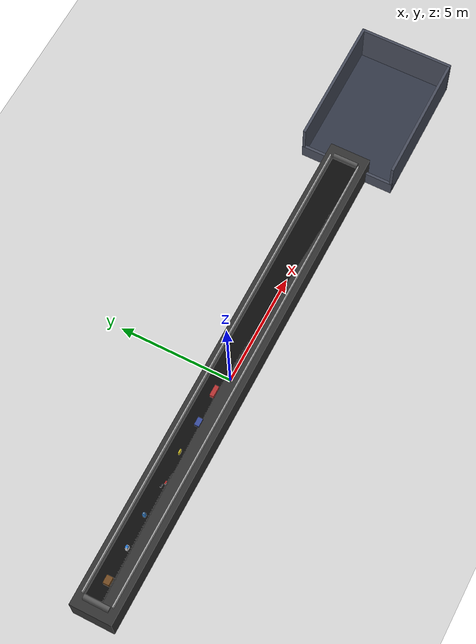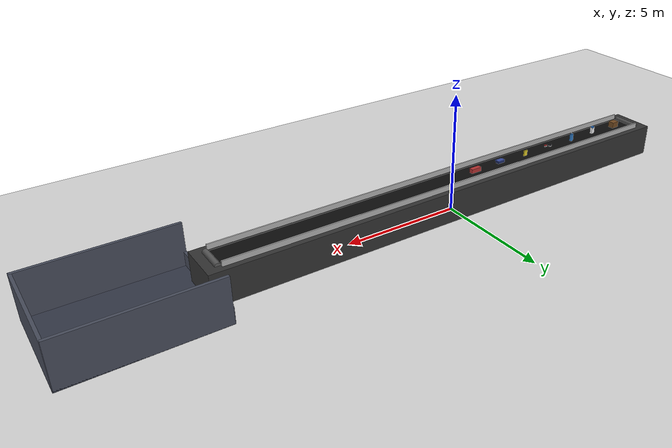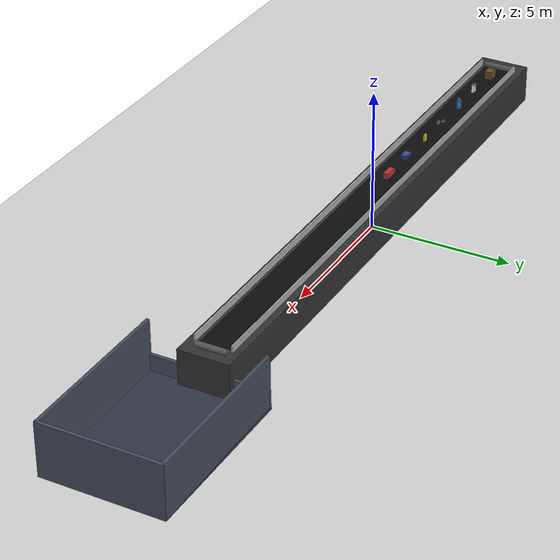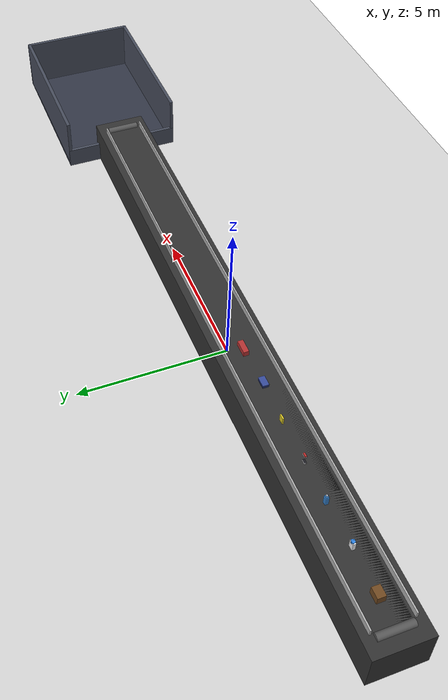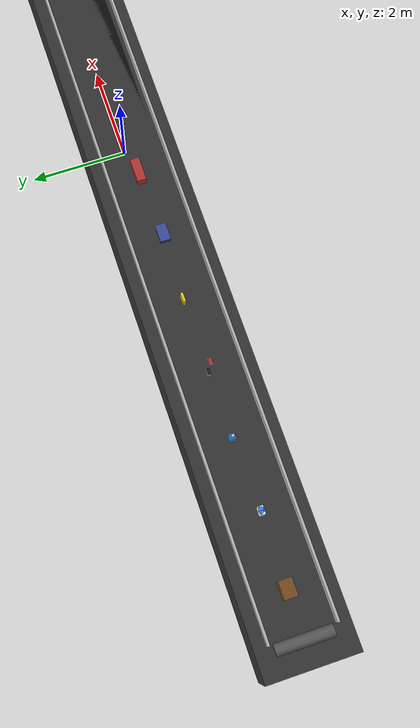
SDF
<?xml version="1.0" ?>
<sdf version="1.8">
  <world name="factory_world">
    <plugin filename="gz-sim-physics-system" name="gz::sim::systems::Physics"/>
    <plugin filename="gz-sim-scene-broadcaster-system" name="gz::sim::systems::SceneBroadcaster"/>
    <plugin filename="gz-sim-user-commands-system" name="gz::sim::systems::UserCommands"/>
    <plugin filename="gz-sim-sensors-system" name="gz::sim::systems::Sensors">
      <render_engine>ogre</render_engine>
    </plugin>

    <gravity>0 0 -9.8</gravity>

    <light name="sun" type="directional">
      <cast_shadows>true</cast_shadows>
      <pose>0 0 16 0 0 0</pose>
      <diffuse>0.95 0.95 0.95 1</diffuse>
      <specular>0.2 0.2 0.2 1</specular>
      <direction>-0.4 0.1 -0.9</direction>
    </light>

    <scene>
      <ambient>0.8 0.8 0.8 1</ambient>
      <background>0.93 0.93 0.93 1</background>
    </scene>

    <model name="ground_plane">
      <static>true</static>
      <link name="link">
        <collision name="collision">
          <geometry>
            <plane>
              <normal>0 0 1</normal>
              <size>80 80</size>
            </plane>
          </geometry>
        </collision>
        <visual name="visual">
          <geometry>
            <plane>
              <normal>0 0 1</normal>
              <size>80 80</size>
            </plane>
          </geometry>
          <material>
            <ambient>0.85 0.85 0.85 1</ambient>
            <diffuse>0.85 0.85 0.85 1</diffuse>
          </material>
        </visual>
      </link>
    </model>

    <!-- Conveyor dimensions:
         total frame length = 22.0 m
         belt top height     = 1.36 m above ground
         all items use the same commanded x velocity -->

    <model name="conveyor_base">
      <static>true</static>
      <pose>0 0 0.68 0 0 0</pose>
      <link name="base_link">
        <collision name="collision">
          <geometry>
            <box>
              <size>22.0 1.8 1.36</size>
            </box>
          </geometry>
        </collision>
        <visual name="visual">
          <geometry>
            <box>
              <size>22.0 1.8 1.36</size>
            </box>
          </geometry>
          <material>
            <ambient>0.20 0.20 0.20 1</ambient>
            <diffuse>0.20 0.20 0.20 1</diffuse>
          </material>
        </visual>
      </link>
    </model>

    <model name="belt_surface">
      <static>true</static>
      <pose>0 0 1.345 0 0 0</pose>
      <link name="belt_link">
        <collision name="collision">
          <geometry>
            <box>
              <size>20.8 1.08 0.03</size>
            </box>
          </geometry>
          <surface>
            <friction>
              <ode>
                <mu>1.8</mu>
                <mu2>1.8</mu2>
              </ode>
            </friction>
          </surface>
        </collision>
        <visual name="visual">
          <geometry>
            <box>
              <size>20.8 1.08 0.03</size>
            </box>
          </geometry>
          <material>
            <ambient>0.05 0.05 0.05 1</ambient>
            <diffuse>0.05 0.05 0.05 1</diffuse>
          </material>
        </visual>
      </link>
    </model>

    <model name="rail_left">
      <static>true</static>
      <pose>0 0.64 1.465 0 0 0</pose>
      <link name="link">
        <collision name="collision">
          <geometry>
            <box>
              <size>20.8 0.05 0.24</size>
            </box>
          </geometry>
        </collision>
        <visual name="visual">
          <geometry>
            <box>
              <size>20.8 0.05 0.24</size>
            </box>
          </geometry>
          <material>
            <ambient>0.70 0.70 0.70 1</ambient>
            <diffuse>0.70 0.70 0.70 1</diffuse>
          </material>
        </visual>
      </link>
    </model>

    <model name="rail_right">
      <static>true</static>
      <pose>0 -0.64 1.465 0 0 0</pose>
      <link name="link">
        <collision name="collision">
          <geometry>
            <box>
              <size>20.8 0.05 0.24</size>
            </box>
          </geometry>
        </collision>
        <visual name="visual">
          <geometry>
            <box>
              <size>20.8 0.05 0.24</size>
            </box>
          </geometry>
          <material>
            <ambient>0.70 0.70 0.70 1</ambient>
            <diffuse>0.70 0.70 0.70 1</diffuse>
          </material>
        </visual>
      </link>
    </model>

    <model name="roller_front">
      <static>true</static>
      <pose>10.50 0 1.36 1.5708 0 0</pose>
      <link name="link">
        <visual name="visual">
          <geometry>
            <cylinder>
              <radius>0.12</radius>
              <length>1.10</length>
            </cylinder>
          </geometry>
          <material>
            <ambient>0.35 0.35 0.35 1</ambient>
            <diffuse>0.35 0.35 0.35 1</diffuse>
          </material>
        </visual>
      </link>
    </model>

    <model name="roller_back">
      <static>true</static>
      <pose>-10.50 0 1.36 1.5708 0 0</pose>
      <link name="link">
        <visual name="visual">
          <geometry>
            <cylinder>
              <radius>0.12</radius>
              <length>1.10</length>
            </cylinder>
          </geometry>
          <material>
            <ambient>0.35 0.35 0.35 1</ambient>
            <diffuse>0.35 0.35 0.35 1</diffuse>
          </material>
        </visual>
      </link>
    </model>

    <!-- Support legs -->
    <model name="leg_1"><static>true</static><pose>-9.0 0.70 0.65 0 0 0</pose><link name="link"><collision name="collision"><geometry><box><size>0.12 0.12 1.30</size></box></geometry></collision><visual name="visual"><geometry><box><size>0.12 0.12 1.30</size></box></geometry><material><ambient>0.45 0.45 0.45 1</ambient><diffuse>0.45 0.45 0.45 1</diffuse></material></visual></link></model>
    <model name="leg_2"><static>true</static><pose>-9.0 -0.70 0.65 0 0 0</pose><link name="link"><collision name="collision"><geometry><box><size>0.12 0.12 1.30</size></box></geometry></collision><visual name="visual"><geometry><box><size>0.12 0.12 1.30</size></box></geometry><material><ambient>0.45 0.45 0.45 1</ambient><diffuse>0.45 0.45 0.45 1</diffuse></material></visual></link></model>
    <model name="leg_3"><static>true</static><pose>-4.5 0.70 0.65 0 0 0</pose><link name="link"><collision name="collision"><geometry><box><size>0.12 0.12 1.30</size></box></geometry></collision><visual name="visual"><geometry><box><size>0.12 0.12 1.30</size></box></geometry><material><ambient>0.45 0.45 0.45 1</ambient><diffuse>0.45 0.45 0.45 1</diffuse></material></visual></link></model>
    <model name="leg_4"><static>true</static><pose>-4.5 -0.70 0.65 0 0 0</pose><link name="link"><collision name="collision"><geometry><box><size>0.12 0.12 1.30</size></box></geometry></collision><visual name="visual"><geometry><box><size>0.12 0.12 1.30</size></box></geometry><material><ambient>0.45 0.45 0.45 1</ambient><diffuse>0.45 0.45 0.45 1</diffuse></material></visual></link></model>
    <model name="leg_5"><static>true</static><pose>0.0 0.70 0.65 0 0 0</pose><link name="link"><collision name="collision"><geometry><box><size>0.12 0.12 1.30</size></box></geometry></collision><visual name="visual"><geometry><box><size>0.12 0.12 1.30</size></box></geometry><material><ambient>0.45 0.45 0.45 1</ambient><diffuse>0.45 0.45 0.45 1</diffuse></material></visual></link></model>
    <model name="leg_6"><static>true</static><pose>0.0 -0.70 0.65 0 0 0</pose><link name="link"><collision name="collision"><geometry><box><size>0.12 0.12 1.30</size></box></geometry></collision><visual name="visual"><geometry><box><size>0.12 0.12 1.30</size></box></geometry><material><ambient>0.45 0.45 0.45 1</ambient><diffuse>0.45 0.45 0.45 1</diffuse></material></visual></link></model>
    <model name="leg_7"><static>true</static><pose>4.5 0.70 0.65 0 0 0</pose><link name="link"><collision name="collision"><geometry><box><size>0.12 0.12 1.30</size></box></geometry></collision><visual name="visual"><geometry><box><size>0.12 0.12 1.30</size></box></geometry><material><ambient>0.45 0.45 0.45 1</ambient><diffuse>0.45 0.45 0.45 1</diffuse></material></visual></link></model>
    <model name="leg_8"><static>true</static><pose>4.5 -0.70 0.65 0 0 0</pose><link name="link"><collision name="collision"><geometry><box><size>0.12 0.12 1.30</size></box></geometry></collision><visual name="visual"><geometry><box><size>0.12 0.12 1.30</size></box></geometry><material><ambient>0.45 0.45 0.45 1</ambient><diffuse>0.45 0.45 0.45 1</diffuse></material></visual></link></model>
    <model name="leg_9"><static>true</static><pose>9.0 0.70 0.65 0 0 0</pose><link name="link"><collision name="collision"><geometry><box><size>0.12 0.12 1.30</size></box></geometry></collision><visual name="visual"><geometry><box><size>0.12 0.12 1.30</size></box></geometry><material><ambient>0.45 0.45 0.45 1</ambient><diffuse>0.45 0.45 0.45 1</diffuse></material></visual></link></model>
    <model name="leg_10"><static>true</static><pose>9.0 -0.70 0.65 0 0 0</pose><link name="link"><collision name="collision"><geometry><box><size>0.12 0.12 1.30</size></box></geometry></collision><visual name="visual"><geometry><box><size>0.12 0.12 1.30</size></box></geometry><material><ambient>0.45 0.45 0.45 1</ambient><diffuse>0.45 0.45 0.45 1</diffuse></material></visual></link></model>

    <!-- Wider and longer open-top collection box placed at a clearly lower height than the elevated conveyor so objects drop into it and remain collected. -->
    <!-- Transfer shelf removed so objects leave the conveyor and fall by gravity directly into the lower box. -->

    <model name="collection_box_bottom">
      <static>true</static>
      <pose>13.60 0 0.06 0 0 0</pose>
      <link name="link">
        <collision name="collision"><geometry><box><size>5.8 4.2 0.12</size></box></geometry><surface><friction><ode><mu>1.2</mu><mu2>1.2</mu2></ode></friction><bounce><restitution_coefficient>0.0</restitution_coefficient></bounce></surface></collision>
        <visual name="visual"><geometry><box><size>5.8 4.2 0.12</size></box></geometry><material><ambient>0.20 0.22 0.28 1</ambient><diffuse>0.20 0.22 0.28 1</diffuse></material></visual>
      </link>
    </model>

    <model name="collection_box_left_wall">
      <static>true</static>
      <pose>13.60 2.04 0.95 0 0 0</pose>
      <link name="link">
        <collision name="collision"><geometry><box><size>5.8 0.12 1.90</size></box></geometry><surface><friction><ode><mu>1.0</mu><mu2>1.0</mu2></ode></friction><bounce><restitution_coefficient>0.0</restitution_coefficient></bounce></surface></collision>
        <visual name="visual"><geometry><box><size>5.8 0.12 1.90</size></box></geometry><material><ambient>0.28 0.30 0.36 1</ambient><diffuse>0.28 0.30 0.36 1</diffuse></material></visual>
      </link>
    </model>

    <model name="collection_box_right_wall">
      <static>true</static>
      <pose>13.60 -2.04 0.95 0 0 0</pose>
      <link name="link">
        <collision name="collision"><geometry><box><size>5.8 0.12 1.90</size></box></geometry><surface><friction><ode><mu>1.0</mu><mu2>1.0</mu2></ode></friction><bounce><restitution_coefficient>0.0</restitution_coefficient></bounce></surface></collision>
        <visual name="visual"><geometry><box><size>5.8 0.12 1.90</size></box></geometry><material><ambient>0.28 0.30 0.36 1</ambient><diffuse>0.28 0.30 0.36 1</diffuse></material></visual>
      </link>
    </model>

    <model name="collection_box_back_wall">
      <static>true</static>
      <pose>16.46 0 0.95 0 0 0</pose>
      <link name="link">
        <collision name="collision">
          <geometry>
            <box>
              <size>0.12 4.2 1.90</size>
            </box>
          </geometry>
          <surface>
            <friction>
              <ode>
                <mu>1.0</mu>
                <mu2>1.0</mu2>
              </ode>
            </friction>
            <bounce>
              <restitution_coefficient>0.0</restitution_coefficient>
            </bounce>
          </surface>
        </collision>
        <visual name="visual">
          <geometry>
            <box>
              <size>0.12 4.2 1.90</size>
            </box>
          </geometry>
          <material>
            <ambient>0.28 0.30 0.36 1</ambient>
            <diffuse>0.28 0.30 0.36 1</diffuse>
          </material>
        </visual>
      </link>
    </model>

    <model name="collection_box_front_wall">
      <static>true</static>
      <pose>10.74 0 0.35 0 0 0</pose>
      <link name="link">
        <collision name="collision">
          <geometry>
            <box>
              <size>0.12 4.2 0.70</size>
            </box>
          </geometry>
          <surface>
            <friction>
              <ode>
                <mu>1.0</mu>
                <mu2>1.0</mu2>
              </ode>
            </friction>
            <bounce>
              <restitution_coefficient>0.0</restitution_coefficient>
            </bounce>
          </surface>
        </collision>
        <visual name="visual">
          <geometry>
            <box>
              <size>0.12 4.2 0.70</size>
            </box>
          </geometry>
          <material>
            <ambient>0.28 0.30 0.36 1</ambient>
            <diffuse>0.28 0.30 0.36 1</diffuse>
          </material>
        </visual>
      </link>
    </model>

    <model name="shipping_box_large">
      <static>false</static>
      <self_collide>false</self_collide>
      <pose>-9.6 0.00 1.505 0 0 0</pose>
      <plugin filename="gz-sim-velocity-control-system" name="gz::sim::systems::VelocityControl">
        <initial_linear>0.18 0 0</initial_linear>
      </plugin>
      <link name="link">
        <gravity>true</gravity>
        <velocity_decay><linear>0.0</linear><angular>8.0</angular></velocity_decay>
        <inertial><mass>0.55</mass><inertia><ixx>0.010</ixx><iyy>0.010</iyy><izz>0.010</izz></inertia></inertial>
        <collision name="collision">
          <geometry><box><size>0.34 0.26 0.26</size></box></geometry>
          <surface><friction><ode><mu>0.025</mu><mu2>0.025</mu2></ode></friction></surface>
        </collision>
        <visual name="visual">
          <geometry><box><size>0.34 0.26 0.26</size></box></geometry>
          <material><ambient>0.45 0.29 0.13 1</ambient><diffuse>0.45 0.29 0.13 1</diffuse></material>
        </visual>
      </link>
    </model>

    <model name="milk_carton">
      <static>false</static>
      <self_collide>false</self_collide>
      <pose>-8.2 -0.02 1.555 0 0 0</pose>
      <plugin filename="gz-sim-velocity-control-system" name="gz::sim::systems::VelocityControl">
        <initial_linear>0.18 0 0</initial_linear>
      </plugin>
      <link name="link">
        <gravity>true</gravity>
        <velocity_decay><linear>0.0</linear><angular>8.5</angular></velocity_decay>
        <inertial><mass>0.36</mass><inertia><ixx>0.005</ixx><iyy>0.005</iyy><izz>0.004</izz></inertia></inertial>
        <collision name="collision">
          <geometry><box><size>0.16 0.10 0.34</size></box></geometry>
          <surface><friction><ode><mu>0.022</mu><mu2>0.022</mu2></ode></friction></surface>
        </collision>
        <visual name="body_visual">
          <pose>0 0 -0.03 0 0 0</pose>
          <geometry><box><size>0.16 0.10 0.28</size></box></geometry>
          <material><ambient>0.97 0.97 0.98 1</ambient><diffuse>0.97 0.97 0.98 1</diffuse></material>
        </visual>
        <visual name="top_left">
          <pose>-0.02 0 0.12 0 0 0.42</pose>
          <geometry><box><size>0.07 0.10 0.07</size></box></geometry>
          <material><ambient>0.20 0.55 0.95 1</ambient><diffuse>0.20 0.55 0.95 1</diffuse></material>
        </visual>
        <visual name="top_right">
          <pose>0.02 0 0.12 0 0 -0.42</pose>
          <geometry><box><size>0.07 0.10 0.07</size></box></geometry>
          <material><ambient>0.20 0.55 0.95 1</ambient><diffuse>0.20 0.55 0.95 1</diffuse></material>
        </visual>
      </link>
    </model>

    <model name="bottle_boxy">
      <static>false</static>
      <self_collide>false</self_collide>
      <pose>-6.8 0.03 1.565 0 0 0</pose>
      <plugin filename="gz-sim-velocity-control-system" name="gz::sim::systems::VelocityControl">
        <initial_linear>0.18 0 0</initial_linear>
      </plugin>
      <link name="link">
        <gravity>true</gravity>
        <velocity_decay><linear>0.0</linear><angular>10.0</angular></velocity_decay>
        <inertial><mass>0.30</mass><inertia><ixx>0.004</ixx><iyy>0.004</iyy><izz>0.003</izz></inertia></inertial>
        <collision name="collision">
          <geometry><box><size>0.12 0.12 0.42</size></box></geometry>
          <surface><friction><ode><mu>0.020</mu><mu2>0.020</mu2></ode></friction></surface>
        </collision>
        <visual name="body_visual">
          <pose>0 0 -0.03 0 0 0</pose>
          <geometry><box><size>0.11 0.11 0.30</size></box></geometry>
          <material><ambient>0.25 0.60 0.95 0.85</ambient><diffuse>0.25 0.60 0.95 0.85</diffuse></material>
        </visual>
        <visual name="shoulder_visual">
          <pose>0 0 0.11 0 0 0</pose>
          <geometry><box><size>0.08 0.08 0.08</size></box></geometry>
          <material><ambient>0.25 0.60 0.95 0.85</ambient><diffuse>0.25 0.60 0.95 0.85</diffuse></material>
        </visual>
        <visual name="cap_visual">
          <pose>0 0 0.18 0 0 0</pose>
          <geometry><box><size>0.04 0.04 0.04</size></box></geometry>
          <material><ambient>0.95 0.95 0.98 1</ambient><diffuse>0.95 0.95 0.98 1</diffuse></material>
        </visual>
      </link>
    </model>

    <model name="sneaker_pair">
      <static>false</static>
      <self_collide>false</self_collide>
      <pose>-5.4 -0.02 1.475 0 0 0</pose>
      <plugin filename="gz-sim-velocity-control-system" name="gz::sim::systems::VelocityControl">
        <initial_linear>0.18 0 0</initial_linear>
      </plugin>
      <link name="link">
        <gravity>true</gravity>
        <velocity_decay><linear>0.0</linear><angular>9.0</angular></velocity_decay>
        <inertial><mass>0.42</mass><inertia><ixx>0.007</ixx><iyy>0.007</iyy><izz>0.006</izz></inertia></inertial>
        <collision name="collision">
          <geometry><box><size>0.36 0.20 0.12</size></box></geometry>
          <surface><friction><ode><mu>0.022</mu><mu2>0.022</mu2></ode></friction></surface>
        </collision>
        <visual name="left_shoe_sole">
          <pose>-0.09 0.05 -0.02 0 0 0</pose>
          <geometry><box><size>0.14 0.07 0.03</size></box></geometry>
          <material><ambient>0.95 0.95 0.95 1</ambient><diffuse>0.95 0.95 0.95 1</diffuse></material>
        </visual>
        <visual name="left_shoe_upper">
          <pose>-0.09 0.05 0.01 0 0 0</pose>
          <geometry><box><size>0.13 0.06 0.05</size></box></geometry>
          <material><ambient>0.12 0.12 0.15 1</ambient><diffuse>0.12 0.12 0.15 1</diffuse></material>
        </visual>
        <visual name="right_shoe_sole">
          <pose>0.09 -0.05 -0.02 0 0 0</pose>
          <geometry><box><size>0.14 0.07 0.03</size></box></geometry>
          <material><ambient>0.95 0.95 0.95 1</ambient><diffuse>0.95 0.95 0.95 1</diffuse></material>
        </visual>
        <visual name="right_shoe_upper">
          <pose>0.09 -0.05 0.01 0 0 0</pose>
          <geometry><box><size>0.13 0.06 0.05</size></box></geometry>
          <material><ambient>0.75 0.18 0.18 1</ambient><diffuse>0.75 0.18 0.18 1</diffuse></material>
        </visual>
      </link>
    </model>

    <model name="packet_pouch">
      <static>false</static>
      <self_collide>false</self_collide>
      <pose>-4.0 0.03 1.505 0 0 0</pose>
      <plugin filename="gz-sim-velocity-control-system" name="gz::sim::systems::VelocityControl">
        <initial_linear>0.18 0 0</initial_linear>
      </plugin>
      <link name="link">
        <gravity>true</gravity>
        <velocity_decay><linear>0.0</linear><angular>9.0</angular></velocity_decay>
        <inertial><mass>0.18</mass><inertia><ixx>0.003</ixx><iyy>0.003</iyy><izz>0.002</izz></inertia></inertial>
        <collision name="collision">
          <geometry><box><size>0.18 0.06 0.24</size></box></geometry>
          <surface><friction><ode><mu>0.018</mu><mu2>0.018</mu2></ode></friction></surface>
        </collision>
        <visual name="visual">
          <geometry><box><size>0.18 0.05 0.24</size></box></geometry>
          <material><ambient>0.88 0.80 0.15 1</ambient><diffuse>0.88 0.80 0.15 1</diffuse></material>
        </visual>
      </link>
    </model>

    <model name="shoe_box">
      <static>false</static>
      <self_collide>false</self_collide>
      <pose>-2.6 -0.03 1.485 0 0 0</pose>
      <plugin filename="gz-sim-velocity-control-system" name="gz::sim::systems::VelocityControl">
        <initial_linear>0.18 0 0</initial_linear>
      </plugin>
      <link name="link">
        <gravity>true</gravity>
        <velocity_decay><linear>0.0</linear><angular>8.0</angular></velocity_decay>
        <inertial><mass>0.48</mass><inertia><ixx>0.008</ixx><iyy>0.008</iyy><izz>0.008</izz></inertia></inertial>
        <collision name="collision">
          <geometry><box><size>0.34 0.20 0.14</size></box></geometry>
          <surface><friction><ode><mu>0.024</mu><mu2>0.024</mu2></ode></friction></surface>
        </collision>
        <visual name="base_visual">
          <pose>0 0 -0.01 0 0 0</pose>
          <geometry><box><size>0.34 0.20 0.10</size></box></geometry>
          <material><ambient>0.14 0.20 0.45 1</ambient><diffuse>0.14 0.20 0.45 1</diffuse></material>
        </visual>
        <visual name="lid_visual">
          <pose>0 0 0.03 0 0 0</pose>
          <geometry><box><size>0.35 0.21 0.05</size></box></geometry>
          <material><ambient>0.22 0.30 0.62 1</ambient><diffuse>0.22 0.30 0.62 1</diffuse></material>
        </visual>
      </link>
    </model>

    <model name="long_package">
      <static>false</static>
      <self_collide>false</self_collide>
      <pose>-1.2 0.02 1.485 0 0 0</pose>
      <plugin filename="gz-sim-velocity-control-system" name="gz::sim::systems::VelocityControl">
        <initial_linear>0.18 0 0</initial_linear>
      </plugin>
      <link name="link">
        <gravity>true</gravity>
        <velocity_decay><linear>0.0</linear><angular>8.0</angular></velocity_decay>
        <inertial><mass>0.65</mass><inertia><ixx>0.012</ixx><iyy>0.012</iyy><izz>0.012</izz></inertia></inertial>
        <collision name="collision">
          <geometry><box><size>0.48 0.18 0.18</size></box></geometry>
          <surface><friction><ode><mu>0.024</mu><mu2>0.024</mu2></ode></friction></surface>
        </collision>
        <visual name="visual">
          <geometry><box><size>0.48 0.18 0.18</size></box></geometry>
          <material><ambient>0.72 0.20 0.20 1</ambient><diffuse>0.72 0.20 0.20 1</diffuse></material>
        </visual>
      </link>
    </model>

  <model name="overhead_camera">
    <static>true</static>
    <pose>9.5 0 6.0 0 1.5708 0</pose>
    <link name="camera_link">
      <sensor name="rgb_camera" type="camera">
        <always_on>true</always_on>
        <update_rate>10</update_rate>
        <visualize>true</visualize>
        <topic>/overhead_camera/image</topic>
        <camera>
          <horizontal_fov>1.35</horizontal_fov>
          <image>
            <width>1280</width>
            <height>720</height>
            <format>R8G8B8</format>
          </image>
          <clip>
            <near>0.05</near>
            <far>50.0</far>
          </clip>
        </camera>
      </sensor>
    </link>
  </model>

  </world>
</sdf>
